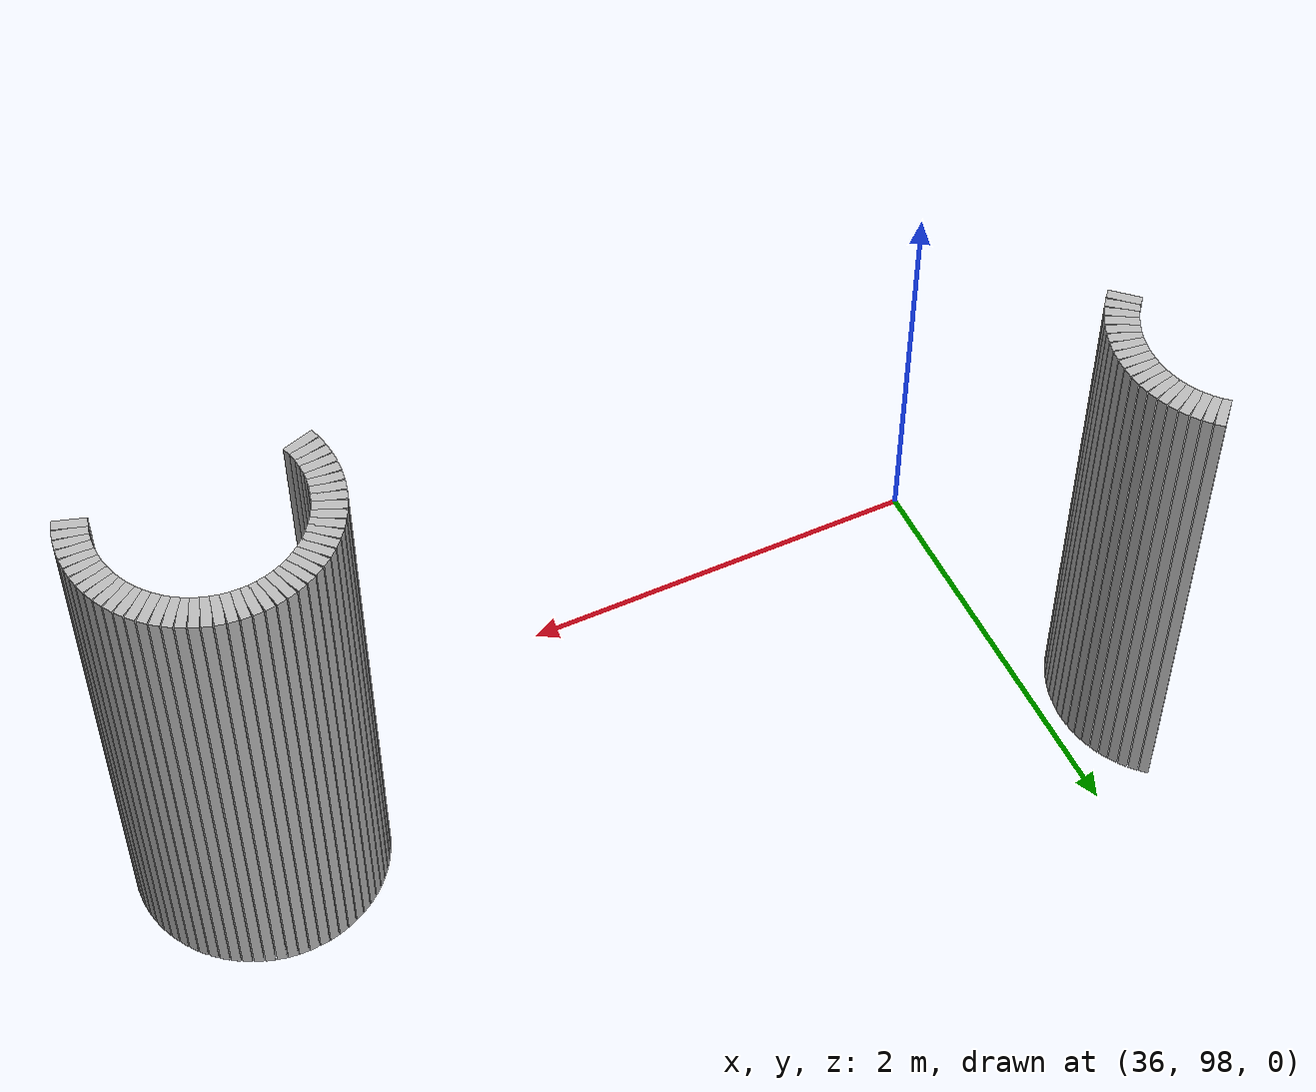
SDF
<sdf version="1.6">
 <model name="sps_1301">
  <static>1</static>
  <allow_auto_disable>0</allow_auto_disable>
  <link name="Wall1014">
   <collision name="collision"><geometry><box><size>0.0453524 0.15 2.5</size></box></geometry></collision>
   <visual name="visual">
    <geometry><box><size>0.0453524 0.15 2.5</size></box></geometry>
    <transparency>0.0</transparency>
   </visual>
   <pose>39.9741 99.0053 1.25 0 0 -0.655614</pose>
  </link>
  <link name="Wall1015">
   <collision name="collision"><geometry><box><size>0.0454423 0.15 2.5</size></box></geometry></collision>
   <visual name="visual">
    <geometry><box><size>0.0454423 0.15 2.5</size></box></geometry>
    <transparency>0.0</transparency>
   </visual>
   <pose>40.0088 98.9761 1.25 0 0 -0.743597</pose>
  </link>
  <link name="Wall1016">
   <collision name="collision"><geometry><box><size>0.0452735 0.15 2.5</size></box></geometry></collision>
   <visual name="visual">
    <geometry><box><size>0.0452735 0.15 2.5</size></box></geometry>
    <transparency>0.0</transparency>
   </visual>
   <pose>40.0408 98.944 1.25 0 0 -0.829263</pose>
  </link>
  <link name="Wall1017">
   <collision name="collision"><geometry><box><size>0.0453637 0.15 2.5</size></box></geometry></collision>
   <visual name="visual">
    <geometry><box><size>0.0453637 0.15 2.5</size></box></geometry>
    <transparency>0.0</transparency>
   </visual>
   <pose>40.0698 98.9093 1.25 0 0 -0.91707</pose>
  </link>
  <link name="Wall1018">
   <collision name="collision"><geometry><box><size>0.045342 0.15 2.5</size></box></geometry></collision>
   <visual name="visual">
    <geometry><box><size>0.045342 0.15 2.5</size></box></geometry>
    <transparency>0.0</transparency>
   </visual>
   <pose>40.0958 98.8722 1.25 0 0 -1.00221</pose>
  </link>
  <link name="Wall1019">
   <collision name="collision"><geometry><box><size>0.0453724 0.15 2.5</size></box></geometry></collision>
   <visual name="visual">
    <geometry><box><size>0.0453724 0.15 2.5</size></box></geometry>
    <transparency>0.0</transparency>
   </visual>
   <pose>40.1186 98.833 1.25 0 0 -1.0897</pose>
  </link>
  <link name="Wall1020">
   <collision name="collision"><geometry><box><size>0.0454525 0.15 2.5</size></box></geometry></collision>
   <visual name="visual">
    <geometry><box><size>0.0454525 0.15 2.5</size></box></geometry>
    <transparency>0.0</transparency>
   </visual>
   <pose>40.1377 98.7919 1.25 0 0 -1.17807</pose>
  </link>
  <link name="Wall1021">
   <collision name="collision"><geometry><box><size>0.0453057 0.15 2.5</size></box></geometry></collision>
   <visual name="visual">
    <geometry><box><size>0.0453057 0.15 2.5</size></box></geometry>
    <transparency>0.0</transparency>
   </visual>
   <pose>40.1533 98.7493 1.25 0 0 -1.26566</pose>
  </link>
  <link name="Wall1022">
   <collision name="collision"><geometry><box><size>0.0454476 0.15 2.5</size></box></geometry></collision>
   <visual name="visual">
    <geometry><box><size>0.0454476 0.15 2.5</size></box></geometry>
    <transparency>0.0</transparency>
   </visual>
   <pose>40.165 98.7055 1.25 0 0 -1.35286</pose>
  </link>
  <link name="Wall1023">
   <collision name="collision"><geometry><box><size>0.0453551 0.15 2.5</size></box></geometry></collision>
   <visual name="visual">
    <geometry><box><size>0.0453551 0.15 2.5</size></box></geometry>
    <transparency>0.0</transparency>
   </visual>
   <pose>40.1728 98.6608 1.25 0 0 -1.4426</pose>
  </link>
  <link name="Wall1024">
   <collision name="collision"><geometry><box><size>0.0452692 0.15 2.5</size></box></geometry></collision>
   <visual name="visual">
    <geometry><box><size>0.0452692 0.15 2.5</size></box></geometry>
    <transparency>0.0</transparency>
   </visual>
   <pose>40.1767 98.6157 1.25 0 0 -1.52764</pose>
  </link>
  <link name="Wall1025">
   <collision name="collision"><geometry><box><size>0.0454521 0.15 2.5</size></box></geometry></collision>
   <visual name="visual">
    <geometry><box><size>0.0454521 0.15 2.5</size></box></geometry>
    <transparency>0.0</transparency>
   </visual>
   <pose>40.1767 98.5704 1.25 0 0 -1.61378</pose>
  </link>
  <link name="Wall1026">
   <collision name="collision"><geometry><box><size>0.0453869 0.15 2.5</size></box></geometry></collision>
   <visual name="visual">
    <geometry><box><size>0.0453869 0.15 2.5</size></box></geometry>
    <transparency>0.0</transparency>
   </visual>
   <pose>40.1727 98.5252 1.25 0 0 -1.70433</pose>
  </link>
  <link name="Wall1027">
   <collision name="collision"><geometry><box><size>0.0452557 0.15 2.5</size></box></geometry></collision>
   <visual name="visual">
    <geometry><box><size>0.0452557 0.15 2.5</size></box></geometry>
    <transparency>0.0</transparency>
   </visual>
   <pose>40.1648 98.4806 1.25 0 0 -1.78829</pose>
  </link>
  <link name="Wall1028">
   <collision name="collision"><geometry><box><size>0.0454804 0.15 2.5</size></box></geometry></collision>
   <visual name="visual">
    <geometry><box><size>0.0454804 0.15 2.5</size></box></geometry>
    <transparency>0.0</transparency>
   </visual>
   <pose>40.1531 98.4368 1.25 0 0 -1.87472</pose>
  </link>
  <link name="Wall1057">
   <collision name="collision"><geometry><box><size>0.0453611 0.15 2.5</size></box></geometry></collision>
   <visual name="visual">
    <geometry><box><size>0.0453611 0.15 2.5</size></box></geometry>
    <transparency>0.0</transparency>
   </visual>
   <pose>39.1621 98.4371 1.25 0 -0 1.87978</pose>
  </link>
  <link name="Wall1058">
   <collision name="collision"><geometry><box><size>0.0454345 0.15 2.5</size></box></geometry></collision>
   <visual name="visual">
    <geometry><box><size>0.0454345 0.15 2.5</size></box></geometry>
    <transparency>0.0</transparency>
   </visual>
   <pose>39.1504 98.4809 1.25 0 -0 1.78743</pose>
  </link>
  <link name="Wall1059">
   <collision name="collision"><geometry><box><size>0.0451735 0.15 2.5</size></box></geometry></collision>
   <visual name="visual">
    <geometry><box><size>0.0451735 0.15 2.5</size></box></geometry>
    <transparency>0.0</transparency>
   </visual>
   <pose>39.1426 98.5255 1.25 0 -0 1.69951</pose>
  </link>
  <link name="Wall1060">
   <collision name="collision"><geometry><box><size>0.0454548 0.15 2.5</size></box></geometry></collision>
   <visual name="visual">
    <geometry><box><size>0.0454548 0.15 2.5</size></box></geometry>
    <transparency>0.0</transparency>
   </visual>
   <pose>39.1387 98.5706 1.25 0 -0 1.61512</pose>
  </link>
  <link name="Wall1061">
   <collision name="collision"><geometry><box><size>0.0454548 0.15 2.5</size></box></geometry></collision>
   <visual name="visual">
    <geometry><box><size>0.0454548 0.15 2.5</size></box></geometry>
    <transparency>0.0</transparency>
   </visual>
   <pose>39.1387 98.616 1.25 0 -0 1.52647</pose>
  </link>
  <link name="Wall1062">
   <collision name="collision"><geometry><box><size>0.0453788 0.15 2.5</size></box></geometry></collision>
   <visual name="visual">
    <geometry><box><size>0.0453788 0.15 2.5</size></box></geometry>
    <transparency>0.0</transparency>
   </visual>
   <pose>39.1427 98.6612 1.25 0 -0 1.4386</pose>
  </link>
  <link name="Wall1063">
   <collision name="collision"><geometry><box><size>0.0453285 0.15 2.5</size></box></geometry></collision>
   <visual name="visual">
    <geometry><box><size>0.0453285 0.15 2.5</size></box></geometry>
    <transparency>0.0</transparency>
   </visual>
   <pose>39.1506 98.7058 1.25 0 -0 1.35227</pose>
  </link>
  <link name="Wall1064">
   <collision name="collision"><geometry><box><size>0.0452292 0.15 2.5</size></box></geometry></collision>
   <visual name="visual">
    <geometry><box><size>0.0452292 0.15 2.5</size></box></geometry>
    <transparency>0.0</transparency>
   </visual>
   <pose>39.1623 98.7495 1.25 0 -0 1.26654</pose>
  </link>
  <link name="Wall1065">
   <collision name="collision"><geometry><box><size>0.0454759 0.15 2.5</size></box></geometry></collision>
   <visual name="visual">
    <geometry><box><size>0.0454759 0.15 2.5</size></box></geometry>
    <transparency>0.0</transparency>
   </visual>
   <pose>39.1778 98.7921 1.25 0 -0 1.17683</pose>
  </link>
  <link name="Wall1066">
   <collision name="collision"><geometry><box><size>0.0453724 0.15 2.5</size></box></geometry></collision>
   <visual name="visual">
    <geometry><box><size>0.0453724 0.15 2.5</size></box></geometry>
    <transparency>0.0</transparency>
   </visual>
   <pose>39.197 98.8332 1.25 0 -0 1.0897</pose>
  </link>
  <link name="Wall1067">
   <collision name="collision"><geometry><box><size>0.0453092 0.15 2.5</size></box></geometry></collision>
   <visual name="visual">
    <geometry><box><size>0.0453092 0.15 2.5</size></box></geometry>
    <transparency>0.0</transparency>
   </visual>
   <pose>39.2197 98.8724 1.25 0 -0 1.00334</pose>
  </link>
  <link name="Wall1068">
   <collision name="collision"><geometry><box><size>0.0454008 0.15 2.5</size></box></geometry></collision>
   <visual name="visual">
    <geometry><box><size>0.0454008 0.15 2.5</size></box></geometry>
    <transparency>0.0</transparency>
   </visual>
   <pose>39.2457 98.9095 1.25 0 -0 0.916002</pose>
  </link>
  <link name="Wall1069">
   <collision name="collision"><geometry><box><size>0.0452735 0.15 2.5</size></box></geometry></collision>
   <visual name="visual">
    <geometry><box><size>0.0452735 0.15 2.5</size></box></geometry>
    <transparency>0.0</transparency>
   </visual>
   <pose>39.2748 98.9442 1.25 0 -0 0.829263</pose>
  </link>
  <link name="Wall1070">
   <collision name="collision"><geometry><box><size>0.0452735 0.15 2.5</size></box></geometry></collision>
   <visual name="visual">
    <geometry><box><size>0.0452735 0.15 2.5</size></box></geometry>
    <transparency>0.0</transparency>
   </visual>
   <pose>39.3068 98.9762 1.25 0 -0 0.741533</pose>
  </link>
  <link name="Wall1071">
   <collision name="collision"><geometry><box><size>0.0455126 0.15 2.5</size></box></geometry></collision>
   <visual name="visual">
    <geometry><box><size>0.0455126 0.15 2.5</size></box></geometry>
    <transparency>0.0</transparency>
   </visual>
   <pose>39.3415 99.0054 1.25 0 -0 0.657985</pose>
  </link>
  <link name="Wall1072">
   <collision name="collision"><geometry><box><size>0.0453659 0.15 2.5</size></box></geometry></collision>
   <visual name="visual">
    <geometry><box><size>0.0453659 0.15 2.5</size></box></geometry>
    <transparency>0.0</transparency>
   </visual>
   <pose>39.3787 99.0314 1.25 0 -0 0.561879</pose>
  </link>
  <link name="Wall1073">
   <collision name="collision"><geometry><box><size>0.0453724 0.15 2.5</size></box></geometry></collision>
   <visual name="visual">
    <geometry><box><size>0.0453724 0.15 2.5</size></box></geometry>
    <transparency>0.0</transparency>
   </visual>
   <pose>39.418 99.054 1.25 0 -0 0.481095</pose>
  </link>
  <link name="Wall1074">
   <collision name="collision"><geometry><box><size>0.0452834 0.15 2.5</size></box></geometry></collision>
   <visual name="visual">
    <geometry><box><size>0.0452834 0.15 2.5</size></box></geometry>
    <transparency>0.0</transparency>
   </visual>
   <pose>39.459 99.0732 1.25 0 -0 0.394273</pose>
  </link>
  <link name="Wall1075">
   <collision name="collision"><geometry><box><size>0.0454804 0.15 2.5</size></box></geometry></collision>
   <visual name="visual">
    <geometry><box><size>0.0454804 0.15 2.5</size></box></geometry>
    <transparency>0.0</transparency>
   </visual>
   <pose>39.5016 99.0887 1.25 0 -0 0.303926</pose>
  </link>
  <link name="Wall1076">
   <collision name="collision"><geometry><box><size>0.0452689 0.15 2.5</size></box></geometry></collision>
   <visual name="visual">
    <geometry><box><size>0.0452689 0.15 2.5</size></box></geometry>
    <transparency>0.0</transparency>
   </visual>
   <pose>39.5454 99.1004 1.25 0 -0 0.218815</pose>
  </link>
  <link name="Wall1077">
   <collision name="collision"><geometry><box><size>0.0453788 0.15 2.5</size></box></geometry></collision>
   <visual name="visual">
    <geometry><box><size>0.0453788 0.15 2.5</size></box></geometry>
    <transparency>0.0</transparency>
   </visual>
   <pose>39.59 99.1083 1.25 0 -0 0.132196</pose>
  </link>
  <link name="Wall1078">
   <collision name="collision"><geometry><box><size>0.0454471 0.15 2.5</size></box></geometry></collision>
   <visual name="visual">
    <geometry><box><size>0.0454471 0.15 2.5</size></box></geometry>
    <transparency>0.0</transparency>
   </visual>
   <pose>39.6352 99.1122 1.25 0 -0 0.0403007</pose>
  </link>
  <link name="Wall1079">
   <collision name="collision"><geometry><box><size>0.0452719 0.15 2.5</size></box></geometry></collision>
   <visual name="visual">
    <geometry><box><size>0.0452719 0.15 2.5</size></box></geometry>
    <transparency>0.0</transparency>
   </visual>
   <pose>39.6805 99.1121 1.25 0 0 -0.044505</pose>
  </link>
  <link name="Wall1080">
   <collision name="collision"><geometry><box><size>0.0453551 0.15 2.5</size></box></geometry></collision>
   <visual name="visual">
    <geometry><box><size>0.0453551 0.15 2.5</size></box></geometry>
    <transparency>0.0</transparency>
   </visual>
   <pose>39.7256 99.1082 1.25 0 0 -0.128194</pose>
  </link>
  <link name="Wall1081">
   <collision name="collision"><geometry><box><size>0.0454476 0.15 2.5</size></box></geometry></collision>
   <visual name="visual">
    <geometry><box><size>0.0454476 0.15 2.5</size></box></geometry>
    <transparency>0.0</transparency>
   </visual>
   <pose>39.7703 99.1004 1.25 0 0 -0.217941</pose>
  </link>
  <link name="Wall1082">
   <collision name="collision"><geometry><box><size>0.0453611 0.15 2.5</size></box></geometry></collision>
   <visual name="visual">
    <geometry><box><size>0.0453611 0.15 2.5</size></box></geometry>
    <transparency>0.0</transparency>
   </visual>
   <pose>39.814 99.0886 1.25 0 0 -0.308985</pose>
  </link>
  <link name="Wall1083">
   <collision name="collision"><geometry><box><size>0.0453827 0.15 2.5</size></box></geometry></collision>
   <visual name="visual">
    <geometry><box><size>0.0453827 0.15 2.5</size></box></geometry>
    <transparency>0.0</transparency>
   </visual>
   <pose>39.8567 99.0731 1.25 0 0 -0.388998</pose>
  </link>
  <link name="Wall1084">
   <collision name="collision"><geometry><box><size>0.0453724 0.15 2.5</size></box></geometry></collision>
   <visual name="visual">
    <geometry><box><size>0.0453724 0.15 2.5</size></box></geometry>
    <transparency>0.0</transparency>
   </visual>
   <pose>39.8978 99.054 1.25 0 0 -0.481095</pose>
  </link>
  <link name="Wall1085">
   <collision name="collision"><geometry><box><size>0.0453092 0.15 2.5</size></box></geometry></collision>
   <visual name="visual">
    <geometry><box><size>0.0453092 0.15 2.5</size></box></geometry>
    <transparency>0.0</transparency>
   </visual>
   <pose>39.937 99.0313 1.25 0 0 -0.567452</pose>
  </link>
  <link name="Wall2385">
   <collision name="collision"><geometry><box><size>0.0452735 0.15 2.5</size></box></geometry></collision>
   <visual name="visual">
    <geometry><box><size>0.0452735 0.15 2.5</size></box></geometry>
    <transparency>0.0</transparency>
   </visual>
   <pose>35.6794 99.9182 1.25 0 0 -0.741533</pose>
  </link>
  <link name="Wall2386">
   <collision name="collision"><geometry><box><size>0.0453974 0.15 2.5</size></box></geometry></collision>
   <visual name="visual">
    <geometry><box><size>0.0453974 0.15 2.5</size></box></geometry>
    <transparency>0.0</transparency>
   </visual>
   <pose>35.7114 99.8862 1.25 0 0 -0.826289</pose>
  </link>
  <link name="Wall2387">
   <collision name="collision"><geometry><box><size>0.0454008 0.15 2.5</size></box></geometry></collision>
   <visual name="visual">
    <geometry><box><size>0.0454008 0.15 2.5</size></box></geometry>
    <transparency>0.0</transparency>
   </visual>
   <pose>35.7407 99.8515 1.25 0 0 -0.916002</pose>
  </link>
  <link name="Wall2388">
   <collision name="collision"><geometry><box><size>0.0454637 0.15 2.5</size></box></geometry></collision>
   <visual name="visual">
    <geometry><box><size>0.0454637 0.15 2.5</size></box></geometry>
    <transparency>0.0</transparency>
   </visual>
   <pose>35.7667 99.8143 1.25 0 0 -1.00551</pose>
  </link>
  <link name="Wall2389">
   <collision name="collision"><geometry><box><size>0.045288 0.15 2.5</size></box></geometry></collision>
   <visual name="visual">
    <geometry><box><size>0.045288 0.15 2.5</size></box></geometry>
    <transparency>0.0</transparency>
   </visual>
   <pose>35.7892 99.775 1.25 0 0 -1.09329</pose>
  </link>
  <link name="Wall2390">
   <collision name="collision"><geometry><box><size>0.0452834 0.15 2.5</size></box></geometry></collision>
   <visual name="visual">
    <geometry><box><size>0.0452834 0.15 2.5</size></box></geometry>
    <transparency>0.0</transparency>
   </visual>
   <pose>35.8083 99.734 1.25 0 0 -1.17652</pose>
  </link>
  <link name="Wall2391">
   <collision name="collision"><geometry><box><size>0.0454804 0.15 2.5</size></box></geometry></collision>
   <visual name="visual">
    <geometry><box><size>0.0454804 0.15 2.5</size></box></geometry>
    <transparency>0.0</transparency>
   </visual>
   <pose>35.8238 99.6914 1.25 0 0 -1.26687</pose>
  </link>
  <link name="Wall2392">
   <collision name="collision"><geometry><box><size>0.0452689 0.15 2.5</size></box></geometry></collision>
   <visual name="visual">
    <geometry><box><size>0.0452689 0.15 2.5</size></box></geometry>
    <transparency>0.0</transparency>
   </visual>
   <pose>35.8356 99.6476 1.25 0 0 -1.35198</pose>
  </link>
  <link name="Wall2393">
   <collision name="collision"><geometry><box><size>0.0453788 0.15 2.5</size></box></geometry></collision>
   <visual name="visual">
    <geometry><box><size>0.0453788 0.15 2.5</size></box></geometry>
    <transparency>0.0</transparency>
   </visual>
   <pose>35.8435 99.603 1.25 0 0 -1.4386</pose>
  </link>
  <link name="Wall2394">
   <collision name="collision"><geometry><box><size>0.0454446 0.15 2.5</size></box></geometry></collision>
   <visual name="visual">
    <geometry><box><size>0.0454446 0.15 2.5</size></box></geometry>
    <transparency>0.0</transparency>
   </visual>
   <pose>35.8473 99.5578 1.25 0 0 -1.53184</pose>
  </link>
  <link name="Wall2395">
   <collision name="collision"><geometry><box><size>0.0452692 0.15 2.5</size></box></geometry></collision>
   <visual name="visual">
    <geometry><box><size>0.0452692 0.15 2.5</size></box></geometry>
    <transparency>0.0</transparency>
   </visual>
   <pose>35.8473 99.5125 1.25 0 0 -1.61395</pose>
  </link>
  <link name="Wall2396">
   <collision name="collision"><geometry><box><size>0.0453551 0.15 2.5</size></box></geometry></collision>
   <visual name="visual">
    <geometry><box><size>0.0453551 0.15 2.5</size></box></geometry>
    <transparency>0.0</transparency>
   </visual>
   <pose>35.8434 99.4674 1.25 0 0 -1.69899</pose>
  </link>
  <link name="Wall2397">
   <collision name="collision"><geometry><box><size>0.0455072 0.15 2.5</size></box></geometry></collision>
   <visual name="visual">
    <geometry><box><size>0.0455072 0.15 2.5</size></box></geometry>
    <transparency>0.0</transparency>
   </visual>
   <pose>35.8356 99.4227 1.25 0 0 -1.78845</pose>
  </link>
  <link name="Wall2398">
   <collision name="collision"><geometry><box><size>0.0453029 0.15 2.5</size></box></geometry></collision>
   <visual name="visual">
    <geometry><box><size>0.0453029 0.15 2.5</size></box></geometry>
    <transparency>0.0</transparency>
   </visual>
   <pose>35.8238 99.3789 1.25 0 0 -1.88019</pose>
  </link>
  <link name="Wall2399">
   <collision name="collision"><geometry><box><size>0.0453827 0.15 2.5</size></box></geometry></collision>
   <visual name="visual">
    <geometry><box><size>0.0453827 0.15 2.5</size></box></geometry>
    <transparency>0.0</transparency>
   </visual>
   <pose>35.8082 99.3363 1.25 0 0 -1.95979</pose>
  </link>
  <link name="Wall2400">
   <collision name="collision"><geometry><box><size>0.0453724 0.15 2.5</size></box></geometry></collision>
   <visual name="visual">
    <geometry><box><size>0.0453724 0.15 2.5</size></box></geometry>
    <transparency>0.0</transparency>
   </visual>
   <pose>35.7891 99.2952 1.25 0 0 -2.05189</pose>
  </link>
  <link name="Wall2401">
   <collision name="collision"><geometry><box><size>0.045342 0.15 2.5</size></box></geometry></collision>
   <visual name="visual">
    <geometry><box><size>0.045342 0.15 2.5</size></box></geometry>
    <transparency>0.0</transparency>
   </visual>
   <pose>35.7664 99.256 1.25 0 0 -2.13938</pose>
  </link>
  <link name="Wall2402">
   <collision name="collision"><geometry><box><size>0.0453637 0.15 2.5</size></box></geometry></collision>
   <visual name="visual">
    <geometry><box><size>0.0453637 0.15 2.5</size></box></geometry>
    <transparency>0.0</transparency>
   </visual>
   <pose>35.7404 99.2189 1.25 0 0 -2.22452</pose>
  </link>
  <link name="Wall2403">
   <collision name="collision"><geometry><box><size>0.0453974 0.15 2.5</size></box></geometry></collision>
   <visual name="visual">
    <geometry><box><size>0.0453974 0.15 2.5</size></box></geometry>
    <transparency>0.0</transparency>
   </visual>
   <pose>35.7113 99.1842 1.25 0 0 -2.3153</pose>
  </link>
 </model>
</sdf>
